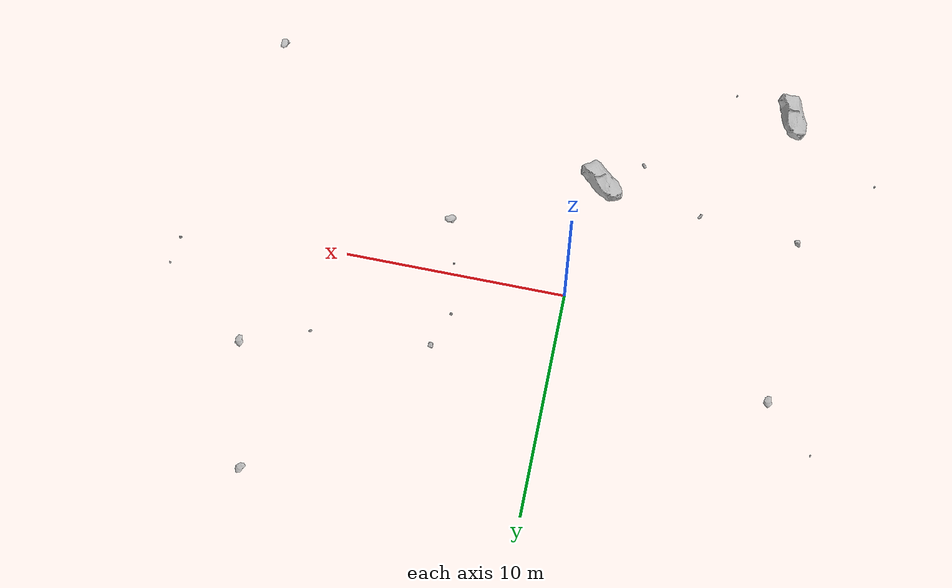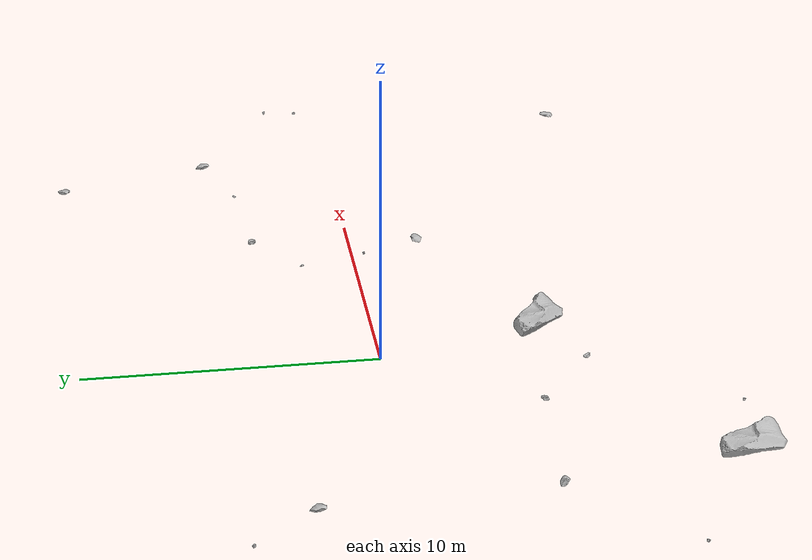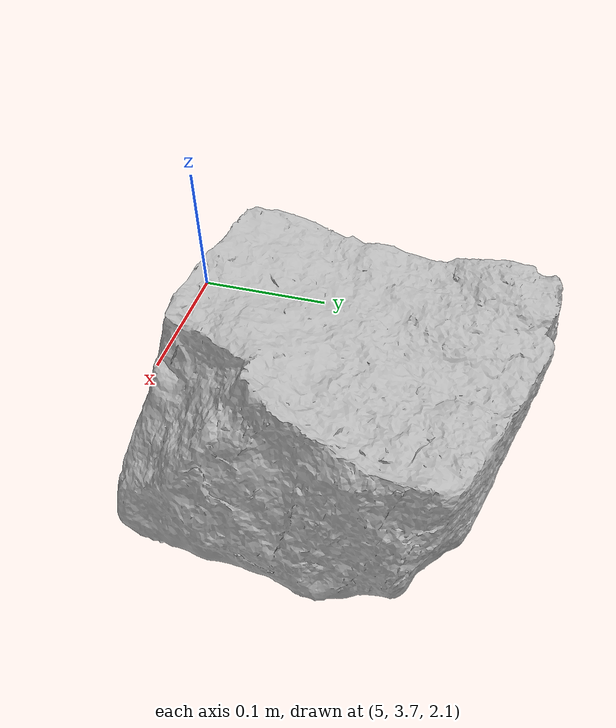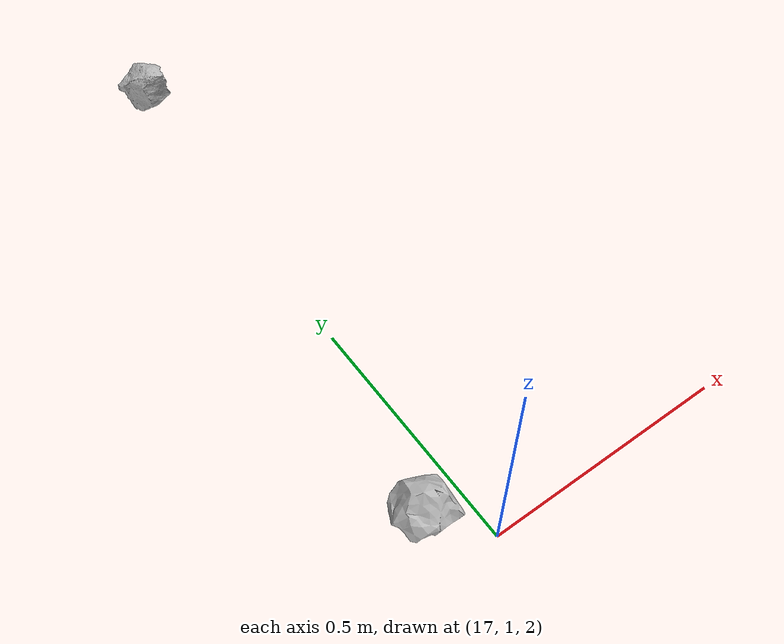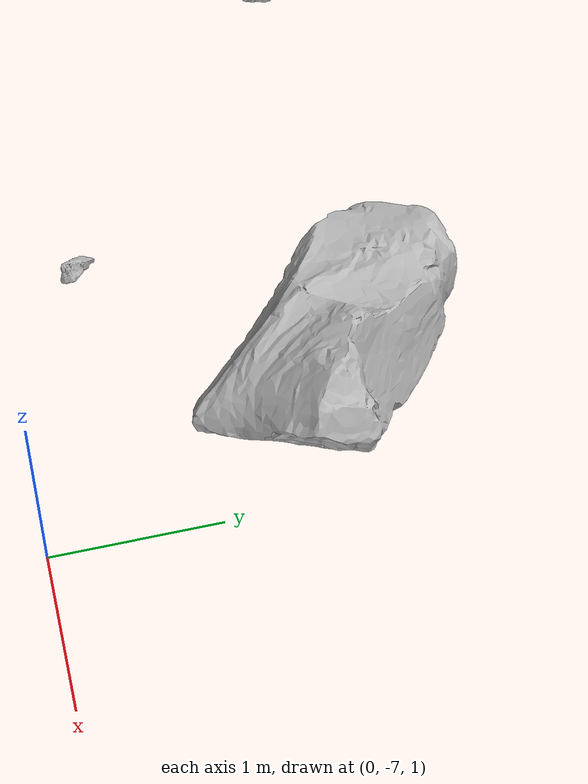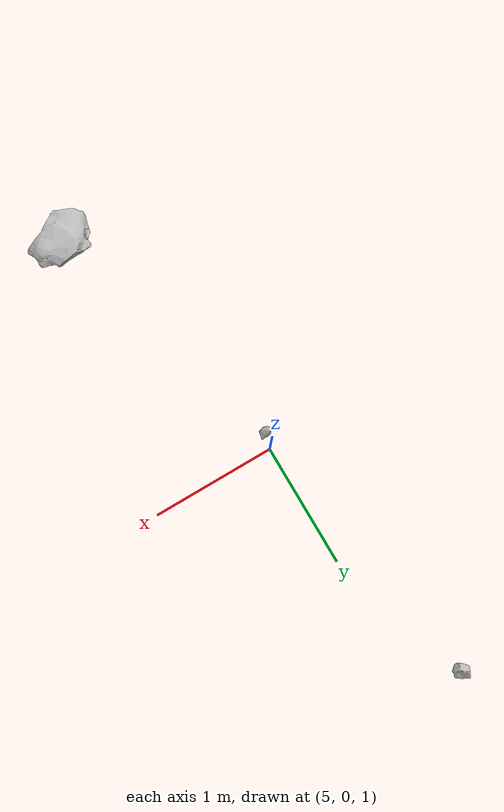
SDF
<sdf version="1.7">
 <world name="marsyard">
  <gravity>0 0 -9.81</gravity>
  <physics name="dart_physics" type="ignored">
   <max_step_size>0.003</max_step_size>
   <real_time_update_rate>333</real_time_update_rate>
   <real_time_factor>1.0</real_time_factor>
  </physics>
  <plugin filename="ignition-gazebo-physics-system" name="ignition::gazebo::systems::Physics"/>
  <plugin filename="ignition-gazebo-user-commands-system" name="ignition::gazebo::systems::UserCommands"/>
  <plugin filename="ignition-gazebo-scene-broadcaster-system" name="ignition::gazebo::systems::SceneBroadcaster"/>
  <plugin filename="ignition-gazebo-contact-system" name="ignition::gazebo::systems::Contact"/>
  <scene>
   <ambient>0.95 0.95 0.95 1</ambient>
   <background>0.70 0.70 0.70 1</background>
   <shadows>false</shadows>
  </scene>
  <light type="directional" name="sun">
   <cast_shadows>false</cast_shadows>
   <pose>0 0 30 0 0 0</pose>
   <diffuse>1 1 1 1</diffuse>
   <specular>0.15 0.15 0.15 1</specular>
   <direction>-0.35 0.1 -0.93</direction>
  </light>
  <model name="Rock_1">
   <static>true</static>
   <pose>-9.5132 3.1543 0.7169 0.0000 0.0000 1.4153</pose>
   <link name="link">
    <visual name="visual">
     <geometry><mesh><uri>package://rock_generator/rocks_ws/rock_8/meshes/rock_8.stl</uri></mesh></geometry>
    </visual>
    <collision name="collision">
     <geometry><mesh><uri>package://rock_generator/rocks_ws/rock_8/meshes/rock_8.stl</uri></mesh></geometry>
    </collision>
   </link>
  </model>
  <model name="Rock_2">
   <static>true</static>
   <pose>-0.7408 -5.0954 1.3382 0.0000 0.0000 -0.5697</pose>
   <link name="link">
    <visual name="visual">
     <geometry><mesh><uri>package://rock_generator/rocks_ws/rock_4/meshes/rock_4.stl</uri></mesh></geometry>
    </visual>
    <collision name="collision">
     <geometry><mesh><uri>package://rock_generator/rocks_ws/rock_4/meshes/rock_4.stl</uri></mesh></geometry>
    </collision>
   </link>
  </model>
  <model name="Rock_3">
   <static>true</static>
   <pose>5.5521 -2.0322 1.6475 0.0000 0.0000 -2.9697</pose>
   <link name="link">
    <visual name="visual">
     <geometry><mesh><uri>package://rock_generator/rocks_ws/rock_8/meshes/rock_8.stl</uri></mesh></geometry>
    </visual>
   </link>
  </model>
  <model name="Rock_4">
   <static>true</static>
   <pose>11.9398 10.4001 1.2902 0.0000 0.0000 0.7528</pose>
   <link name="link">
    <visual name="visual">
     <geometry><mesh><uri>package://rock_generator/rocks_ws/rock_8/meshes/rock_8.stl</uri></mesh></geometry>
    </visual>
    <collision name="collision">
     <geometry><mesh><uri>package://rock_generator/rocks_ws/rock_8/meshes/rock_8.stl</uri></mesh></geometry>
    </collision>
   </link>
  </model>
  <model name="Rock_6">
   <static>true</static>
   <pose>-11.5626 5.1815 1.0029 0.0000 0.0000 -1.8823</pose>
   <link name="link">
    <visual name="visual">
     <geometry><mesh><uri>package://rock_generator/rocks_ws/rock_9/meshes/rock_9.stl</uri></mesh></geometry>
    </visual>
   </link>
  </model>
  <model name="Rock_7">
   <static>true</static>
   <pose>10.4582 4.0832 1.3739 0.0000 0.0000 0.7060</pose>
   <link name="link">
    <visual name="visual">
     <geometry><mesh><uri>package://rock_generator/rocks_ws/rock_5/meshes/rock_5.stl</uri></mesh></geometry>
    </visual>
    <collision name="collision">
     <geometry><mesh><uri>package://rock_generator/rocks_ws/rock_5/meshes/rock_5.stl</uri></mesh></geometry>
    </collision>
   </link>
  </model>
  <model name="Rock_8">
   <static>true</static>
   <pose>17.0943 2.3891 1.8655 0.0000 0.0000 -0.9562</pose>
   <link name="link">
    <visual name="visual">
     <geometry><mesh><uri>package://rock_generator/rocks_ws/rock_9/meshes/rock_9.stl</uri></mesh></geometry>
    </visual>
   </link>
  </model>
  <model name="Rock_9">
   <static>true</static>
   <pose>-5.2996 -4.4457 1.2848 0.0000 0.0000 0.8727</pose>
   <link name="link">
    <visual name="visual">
     <geometry><mesh><uri>package://rock_generator/rocks_ws/rock_6/meshes/rock_6.stl</uri></mesh></geometry>
    </visual>
    <collision name="collision">
     <geometry><mesh><uri>package://rock_generator/rocks_ws/rock_6/meshes/rock_6.stl</uri></mesh></geometry>
    </collision>
   </link>
  </model>
  <model name="Rock_11">
   <static>true</static>
   <pose>4.9887 -0.0933 1.4684 0.0000 0.0000 -3.0675</pose>
   <link name="link">
    <visual name="visual">
     <geometry><mesh><uri>package://rock_generator/rocks_ws/rock_9/meshes/rock_9.stl</uri></mesh></geometry>
    </visual>
   </link>
  </model>
  <model name="Rock_12">
   <static>true</static>
   <pose>5.0948 3.8495 2.0520 0.0000 0.0000 0.5941</pose>
   <link name="link">
    <visual name="visual">
     <geometry><mesh><uri>package://rock_generator/rocks_ws/rock_1/meshes/rock_1.stl</uri></mesh></geometry>
    </visual>
    <collision name="collision">
     <geometry><mesh><uri>package://rock_generator/rocks_ws/rock_1/meshes/rock_1.stl</uri></mesh></geometry>
    </collision>
   </link>
  </model>
  <model name="Rock_13">
   <static>true</static>
   <pose>-2.4388 -6.4560 1.0135 0.0000 0.0000 2.1122</pose>
   <link name="link">
    <visual name="visual">
     <geometry><mesh><uri>package://rock_generator/rocks_ws/rock_6/meshes/rock_6.stl</uri></mesh></geometry>
    </visual>
   </link>
  </model>
  <model name="Rock_16">
   <static>true</static>
   <pose>-8.7104 -10.0098 1.0548 0.0000 0.0000 -1.1007</pose>
   <link name="link">
    <visual name="visual">
     <geometry><mesh><uri>package://rock_generator/rocks_ws/rock_4/meshes/rock_4.stl</uri></mesh></geometry>
    </visual>
    <collision name="collision">
     <geometry><mesh><uri>package://rock_generator/rocks_ws/rock_4/meshes/rock_4.stl</uri></mesh></geometry>
    </collision>
   </link>
  </model>
  <model name="Rock_17">
   <static>true</static>
   <pose>16.9785 1.1750 1.8378 0.0000 0.0000 -0.2696</pose>
   <link name="link">
    <visual name="visual">
     <geometry><mesh><uri>package://rock_generator/rocks_ws/rock_5/meshes/rock_5.stl</uri></mesh></geometry>
    </visual>
    <collision name="collision">
     <geometry><mesh><uri>package://rock_generator/rocks_ws/rock_5/meshes/rock_5.stl</uri></mesh></geometry>
    </collision>
   </link>
  </model>
  <model name="Rock_18">
   <static>true</static>
   <pose>13.3793 5.1098 1.3608 0.0000 0.0000 1.5827</pose>
   <link name="link">
    <visual name="visual">
     <geometry><mesh><uri>package://rock_generator/rocks_ws/rock_8/meshes/rock_8.stl</uri></mesh></geometry>
    </visual>
    <collision name="collision">
     <geometry><mesh><uri>package://rock_generator/rocks_ws/rock_8/meshes/rock_8.stl</uri></mesh></geometry>
    </collision>
   </link>
  </model>
  <model name="Rock_19">
   <static>true</static>
   <pose>-9.8346 -4.1120 1.1176 0.0000 0.0000 -1.2769</pose>
   <link name="link">
    <visual name="visual">
     <geometry><mesh><uri>package://rock_generator/rocks_ws/rock_3/meshes/rock_3.stl</uri></mesh></geometry>
    </visual>
    <collision name="collision">
     <geometry><mesh><uri>package://rock_generator/rocks_ws/rock_3/meshes/rock_3.stl</uri></mesh></geometry>
    </collision>
   </link>
  </model>
  <model name="Rock_20">
   <static>true</static>
   <pose>4.6449 2.1393 1.3064 0.0000 0.0000 2.4629</pose>
   <link name="link">
    <visual name="visual">
     <geometry><mesh><uri>package://rock_generator/rocks_ws/rock_5/meshes/rock_5.stl</uri></mesh></geometry>
    </visual>
    <collision name="collision">
     <geometry><mesh><uri>package://rock_generator/rocks_ws/rock_5/meshes/rock_5.stl</uri></mesh></geometry>
    </collision>
   </link>
  </model>
  <model name="Rock_22">
   <static>true</static>
   <pose>-6.0565 -10.6412 1.1649 0.0000 0.0000 1.3850</pose>
   <link name="link">
    <visual name="visual">
     <geometry><mesh><uri>package://rock_generator/rocks_ws/rock_9/meshes/rock_9.stl</uri></mesh></geometry>
    </visual>
    <collision name="collision">
     <geometry><mesh><uri>package://rock_generator/rocks_ws/rock_9/meshes/rock_9.stl</uri></mesh></geometry>
    </collision>
   </link>
  </model>
  <model name="Rock_23">
   <static>true</static>
   <pose>-12.8474 -7.5526 0.8375 0.0000 0.0000 1.1282</pose>
   <link name="link">
    <visual name="visual">
     <geometry><mesh><uri>package://rock_generator/rocks_ws/rock_9/meshes/rock_9.stl</uri></mesh></geometry>
    </visual>
   </link>
  </model>
  <model name="Rock_24">
   <static>true</static>
   <pose>14.7388 -8.7250 2.1456 0.0000 0.0000 -1.8389</pose>
   <link name="link">
    <visual name="visual">
     <geometry><mesh><uri>package://rock_generator/rocks_ws/rock_8/meshes/rock_8.stl</uri></mesh></geometry>
    </visual>
    <collision name="collision">
     <geometry><mesh><uri>package://rock_generator/rocks_ws/rock_8/meshes/rock_8.stl</uri></mesh></geometry>
    </collision>
   </link>
  </model>
 </world>
</sdf>
